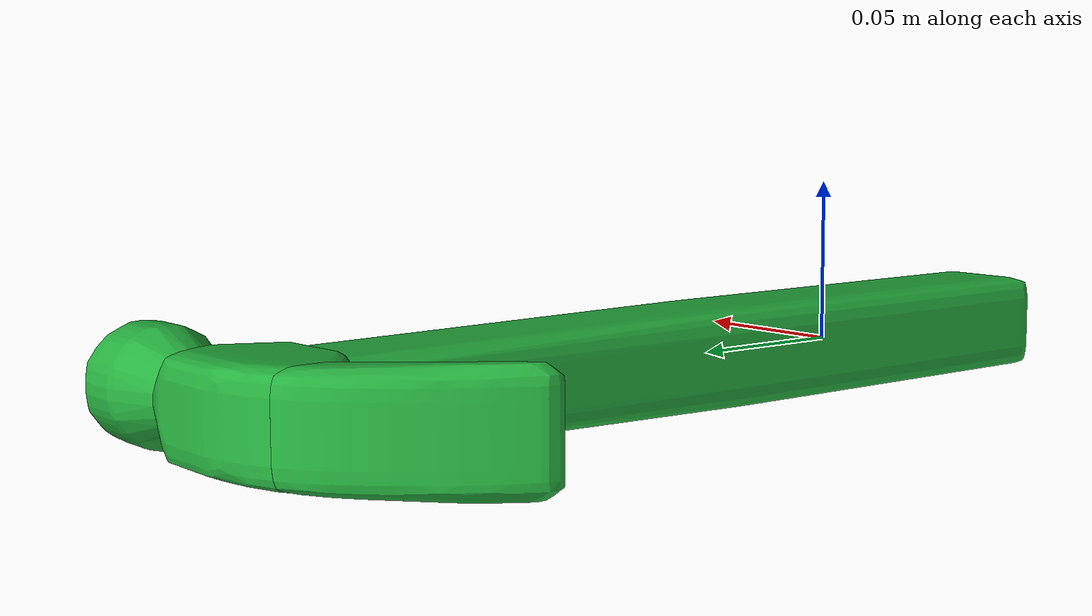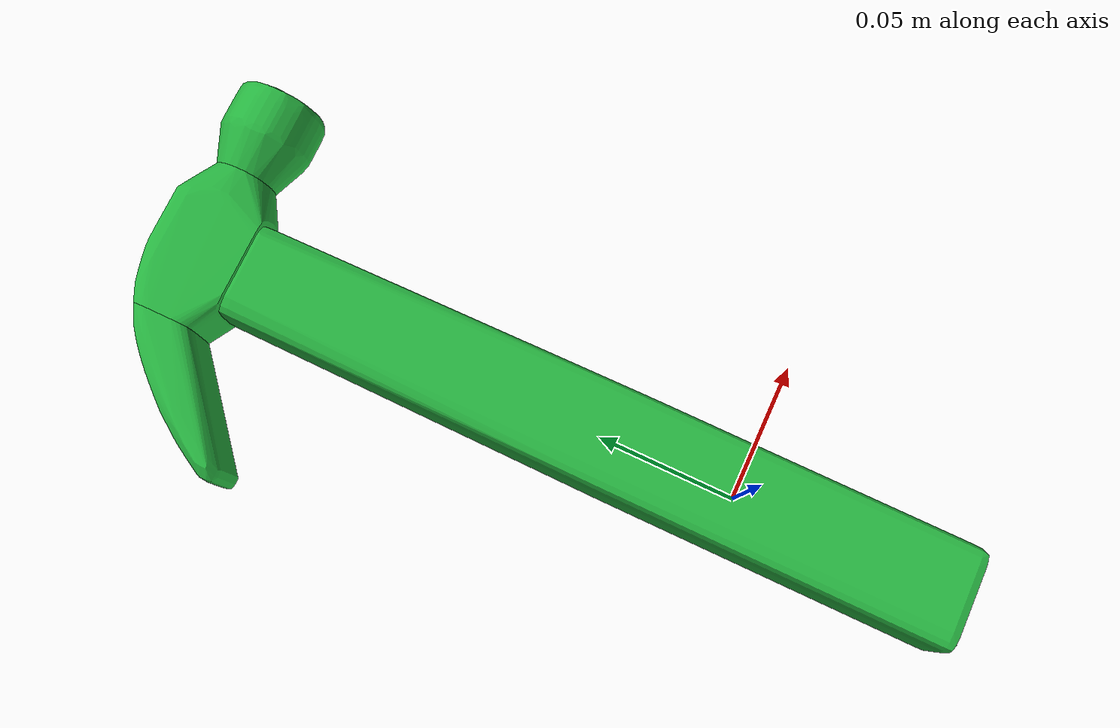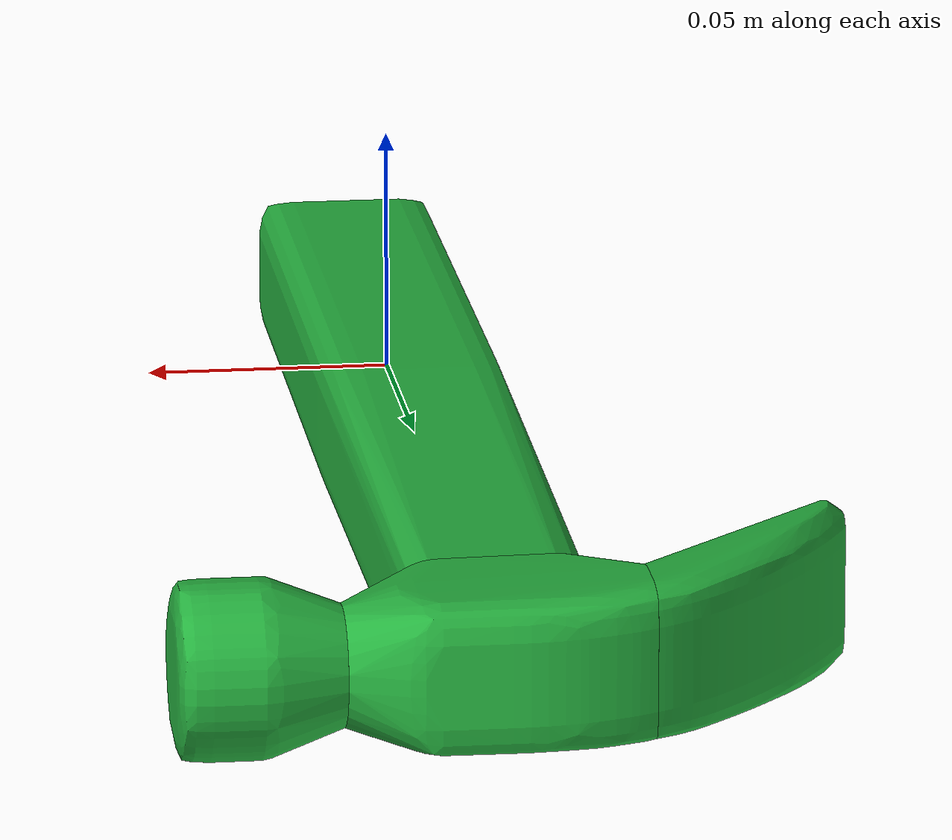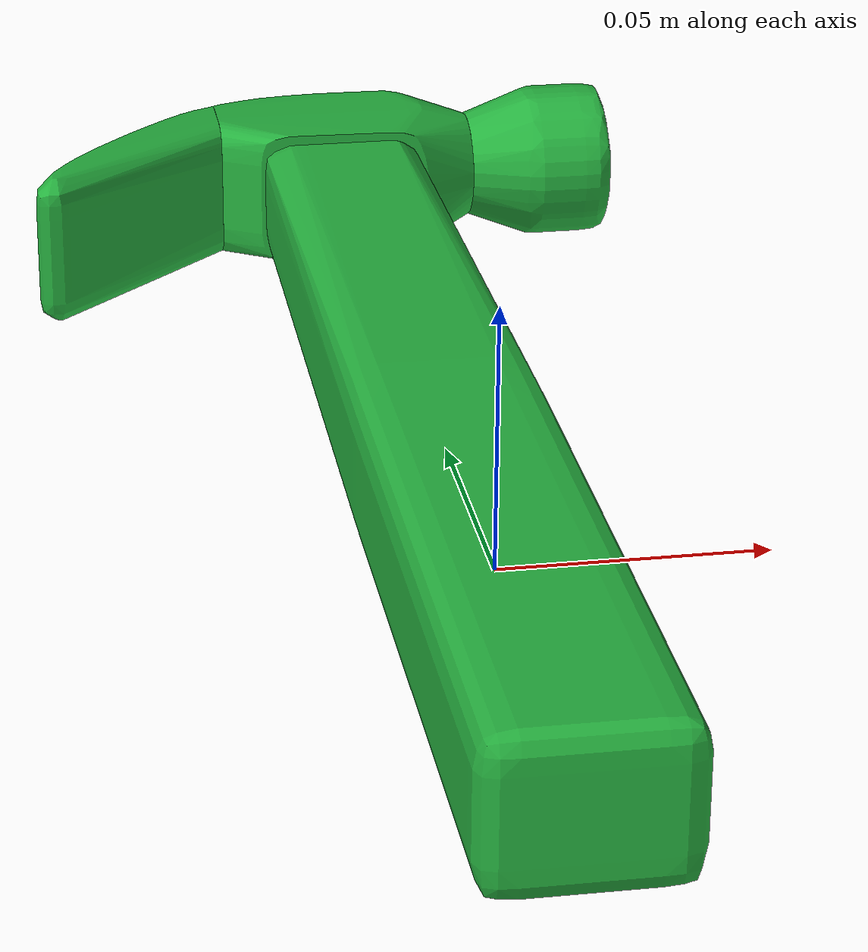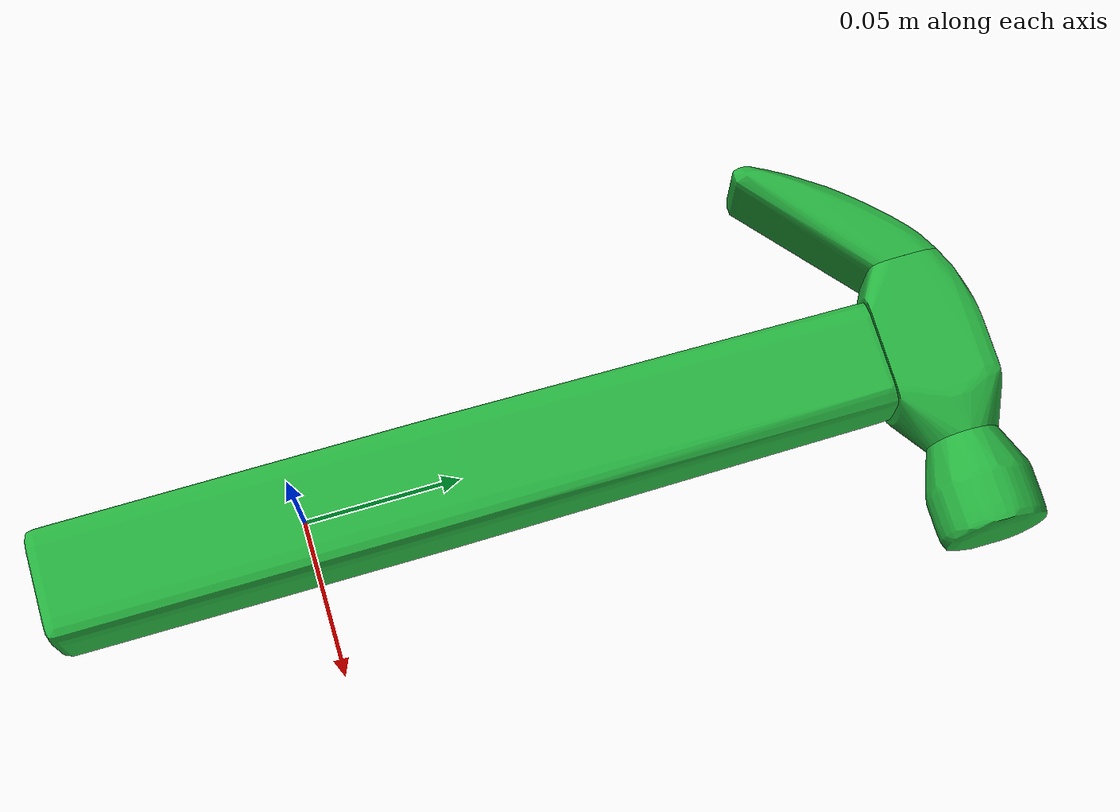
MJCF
<mujoco model="hammer_edge">
  <compiler meshdir="meshes" angle="radian"/>
  <default>
    <default class="visual"><geom contype="0" conaffinity="0" group="2" rgba="0.15 0.7 0.25 1"/></default>
    <default class="collision"><geom group="3"/></default>
  </default>
  <asset>
    <mesh name="hammer_edge_hull0" file="hammer_edge_hull0.obj"/>
    <mesh name="hammer_edge_hull1" file="hammer_edge_hull1.obj"/>
    <mesh name="hammer_edge_hull2" file="hammer_edge_hull2.obj"/>
    <mesh name="hammer_edge_hull3" file="hammer_edge_hull3.obj"/>
  </asset>
  <worldbody>
    <body name="object" pos="0 0 0">
      <freejoint name="object_free"/>
      <geom type="mesh" mesh="hammer_edge_hull0" class="visual"/>
      <geom type="mesh" mesh="hammer_edge_hull1" class="visual"/>
      <geom type="mesh" mesh="hammer_edge_hull2" class="visual"/>
      <geom type="mesh" mesh="hammer_edge_hull3" class="visual"/>
      <geom type="mesh" mesh="hammer_edge_hull0" class="collision"/>
      <geom type="mesh" mesh="hammer_edge_hull1" class="collision"/>
      <geom type="mesh" mesh="hammer_edge_hull2" class="collision"/>
      <geom type="mesh" mesh="hammer_edge_hull3" class="collision"/>
    </body>
  </worldbody>
</mujoco>
